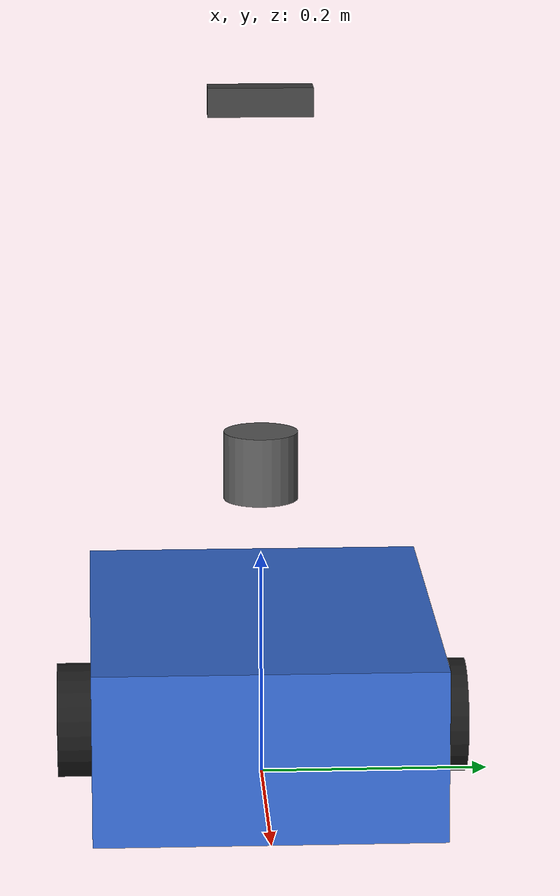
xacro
<?xml version="1.0"?>
<robot name="my_robot" xmlns:xacro="http://www.ros.org/wiki/xacro">

  <!-- base footprint -->
  <link name="base_footprint"/>

  <!-- main body -->
  <link name="base_link">
    <inertial>
      <origin xyz="0 0 0.075" rpy="0 0 0"/>
      <mass value="10.0"/>
      <inertia ixx="0.10" ixy="0.0" ixz="0.0"
               iyy="0.10" iyz="0.0"
               izz="0.10"/>
    </inertial>

    <visual>
      <origin xyz="0 0 0.075" rpy="0 0 0"/>
      <geometry>
        <box size="0.40 0.30 0.15"/>
      </geometry>
      <material name="blue">
        <color rgba="0.2 0.4 0.8 1.0"/>
      </material>
    </visual>

    <collision>
      <origin xyz="0 0 0.075" rpy="0 0 0"/>
      <geometry>
        <box size="0.40 0.30 0.15"/>
      </geometry>
    </collision>
  </link>

  <joint name="base_footprint_joint" type="fixed">
    <parent link="base_footprint"/>
    <child link="base_link"/>
    <origin xyz="0 0 0" rpy="0 0 0"/>
  </joint>

  <!-- left wheel -->
  <link name="left_wheel_link">
    <inertial>
      <origin xyz="0 0 0" rpy="0 0 0"/>
      <mass value="1.0"/>
      <inertia ixx="0.001" ixy="0.0" ixz="0.0"
               iyy="0.001" iyz="0.0"
               izz="0.001"/>
    </inertial>

    <visual>
      <origin xyz="0 0 0" rpy="1.57079632679 0 0"/>
      <geometry>
        <cylinder radius="0.05" length="0.03"/>
      </geometry>
      <material name="black">
        <color rgba="0.1 0.1 0.1 1.0"/>
      </material>
    </visual>

    <collision>
      <origin xyz="0 0 0" rpy="1.57079632679 0 0"/>
      <geometry>
        <cylinder radius="0.05" length="0.03"/>
      </geometry>
    </collision>
  </link>

  <joint name="left_wheel_joint" type="continuous">
    <parent link="base_link"/>
    <child link="left_wheel_link"/>
    <origin xyz="0.0 0.165 0.05" rpy="0 0 0"/>
    <axis xyz="0 1 0"/>
  </joint>

  <!-- right wheel -->
  <link name="right_wheel_link">
    <inertial>
      <origin xyz="0 0 0" rpy="0 0 0"/>
      <mass value="1.0"/>
      <inertia ixx="0.001" ixy="0.0" ixz="0.0"
               iyy="0.001" iyz="0.0"
               izz="0.001"/>
    </inertial>

    <visual>
      <origin xyz="0 0 0" rpy="1.57079632679 0 0"/>
      <geometry>
        <cylinder radius="0.05" length="0.03"/>
      </geometry>
      <material name="black"/>
    </visual>

    <collision>
      <origin xyz="0 0 0" rpy="1.57079632679 0 0"/>
      <geometry>
        <cylinder radius="0.05" length="0.03"/>
      </geometry>
    </collision>
  </link>

  <joint name="right_wheel_joint" type="continuous">
    <parent link="base_link"/>
    <child link="right_wheel_link"/>
    <origin xyz="0.0 -0.165 0.05" rpy="0 0 0"/>
    <axis xyz="0 1 0"/>
  </joint>

  <!-- caster wheel (for stability) -->
  <link name="caster_link">
    <inertial>
      <origin xyz="0 0 0" rpy="0 0 0"/>
      <mass value="0.2"/>
      <inertia ixx="0.0001" ixy="0.0" ixz="0.0"
               iyy="0.0001" iyz="0.0"
               izz="0.0001"/>
    </inertial>

    <visual>
      <geometry>
        <sphere radius="0.02"/>
      </geometry>
      <material name="gray">
        <color rgba="0.5 0.5 0.5 1.0"/>
      </material>
    </visual>

    <collision>
      <geometry>
        <sphere radius="0.02"/>
      </geometry>
    </collision>
  </link>

  <joint name="caster_joint" type="fixed">
    <parent link="base_link"/>
    <child link="caster_link"/>
    <origin xyz="-0.15 0 0.02" rpy="0 0 0"/>
  </joint>

  <!-- RGBD camera mount -->
  <link name="camera_mount_link"/>
  <joint name="camera_mount_joint" type="fixed">
    <parent link="base_link"/>
    <child link="camera_mount_link"/>
    <origin xyz="0.0 0.0 0.60" rpy="0 0 0"/>
  </joint>

  <!-- camera body -->
  <link name="camera_link">
    <inertial>
      <origin xyz="0 0 0" rpy="0 0 0"/>
      <mass value="0.2"/>
      <inertia ixx="0.0001" ixy="0.0" ixz="0.0"
               iyy="0.0001" iyz="0.0"
               izz="0.0001"/>
    </inertial>

    <visual>
      <origin xyz="0 0 0" rpy="0 0 0"/>
      <geometry>
        <box size="0.025 0.09 0.025"/>
      </geometry>
      <material name="dark_gray">
        <color rgba="0.25 0.25 0.25 1.0"/>
      </material>
    </visual>

    <collision>
      <origin xyz="0 0 0" rpy="0 0 0"/>
      <geometry>
        <box size="0.09 0.025 0.025"/>
      </geometry>
    </collision>
  </link>

  <gazebo reference="camera_link">
    <material>Gazebo/DarkGrey</material>
  </gazebo>

  <joint name="camera_joint" type="fixed">
    <parent link="camera_mount_link"/>
    <child link="camera_link"/>
    <origin xyz="0 0 0" rpy="0 0 0"/>
  </joint>

  <!-- color frame -->
  <link name="camera_color_frame"/>
  <joint name="camera_color_joint" type="fixed">
    <parent link="camera_link"/>
    <child link="camera_color_frame"/>
    <origin xyz="0 0 0" rpy="0 0 0"/>
  </joint>

  <link name="camera_color_optical_frame"/>
  <joint name="camera_color_optical_joint" type="fixed">
    <parent link="camera_color_frame"/>
    <child link="camera_color_optical_frame"/>
    <origin xyz="0 0 0" rpy="-1.57079632679 0 -1.57079632679"/>
  </joint>

  <!-- depth frame -->
  <link name="camera_depth_frame"/>
  <joint name="camera_depth_joint" type="fixed">
    <parent link="camera_link"/>
    <child link="camera_depth_frame"/>
    <origin xyz="0 0 0" rpy="0 0 0"/>
  </joint>

  <link name="camera_depth_optical_frame"/>
  <joint name="camera_depth_optical_joint" type="fixed">
    <parent link="camera_depth_frame"/>
    <child link="camera_depth_optical_frame"/>
    <origin xyz="0 0 0" rpy="-1.57079632679 0 -1.57079632679"/>
  </joint>

  <!-- 3D lidar mount -->
  <link name="lidar_link">
    <inertial>
      <origin xyz="0 0 0" rpy="0 0 0"/>
      <mass value="0.265"/>
      <inertia ixx="0.0002" ixy="0.0" ixz="0.0"
               iyy="0.0002" iyz="0.0"
               izz="0.0002"/>
    </inertial>

    <visual>
      <origin xyz="0 0 0" rpy="0 0 0"/>
      <geometry>
        <cylinder radius="0.0325" length="0.06"/>
      </geometry>
      <material name="lidar_gray">
        <color rgba="0.35 0.35 0.35 1.0"/>
      </material>
    </visual>

    <collision>
      <origin xyz="0 0 0" rpy="0 0 0"/>
      <geometry>
        <cylinder radius="0.0325" length="0.06"/>
      </geometry>
    </collision>
  </link>

  <joint name="lidar_joint" type="fixed">
    <parent link="base_link"/>
    <child link="lidar_link"/>
    <origin xyz="0.0 0.0 0.28" rpy="0 0 0"/>
  </joint>

  <link name="lidar_frame"/>
  <joint name="lidar_frame_joint" type="fixed">
    <parent link="lidar_link"/>
    <child link="lidar_frame"/>
    <origin xyz="0 0 0" rpy="0 0 0"/>
  </joint>

  <gazebo reference="lidar_link">
    <material>Gazebo/DarkGrey</material>
  </gazebo>

  <!-- friction -->
  <gazebo reference="left_wheel_link">
    <mu1>1.0</mu1>
    <mu2>1.0</mu2>
  </gazebo>

  <gazebo reference="right_wheel_link">
    <mu1>1.0</mu1>
    <mu2>1.0</mu2>
  </gazebo>

  <!-- diff drive plugin -->
  <gazebo>
    <plugin name="diff_drive" filename="libgazebo_ros_diff_drive.so">
      <ros>
        <namespace>/</namespace>
      </ros>

      <update_rate>50</update_rate>

      <left_joint>left_wheel_joint</left_joint>
      <right_joint>right_wheel_joint</right_joint>

      <wheel_separation>0.33</wheel_separation>
      <wheel_diameter>0.10</wheel_diameter>

      <max_wheel_torque>20.0</max_wheel_torque>
      <max_wheel_acceleration>10.0</max_wheel_acceleration>

      <command_topic>cmd_vel</command_topic>
      <odometry_topic>odom</odometry_topic>
      <odometry_frame>odom</odometry_frame>
      <robot_base_frame>base_footprint</robot_base_frame>

      <publish_odom>true</publish_odom>
      <publish_odom_tf>true</publish_odom_tf>
      <publish_wheel_tf>true</publish_wheel_tf>
    </plugin>
  </gazebo>

  <!-- Gazebo RGBD camera -->
  <gazebo reference="camera_link">
    <sensor name="rgbd_sensor" type="depth">
      <always_on>true</always_on>
      <update_rate>30.0</update_rate>
      <visualize>false</visualize>

      <camera>
        <horizontal_fov>1.211259</horizontal_fov>
        <image>
          <width>640</width>
          <height>480</height>
          <format>R8G8B8</format>
        </image>
        <clip>
          <near>0.1</near>
          <far>8.0</far>
        </clip>
      </camera>

      <plugin name="gazebo_ros_camera" filename="libgazebo_ros_camera.so">
        <ros>
          <namespace>/</namespace>
          <remapping>rgbd/image_raw:=rgbd/image_raw</remapping>
          <remapping>rgbd/camera_info:=rgbd/camera_info</remapping>
          <remapping>rgbd/depth/image_raw:=rgbd/depth/image_raw</remapping>
          <remapping>rgbd/depth/camera_info:=rgbd/depth/camera_info</remapping>
          <remapping>rgbd/points:=rgbd/points</remapping>
        </ros>

        <camera_name>rgbd</camera_name>
        <frame_name>camera_depth_optical_frame</frame_name>
        <min_depth>0.1</min_depth>
        <max_depth>8.0</max_depth>
      </plugin>
    </sensor>
  </gazebo>

  <!-- Gazebo 3D lidar -->
  <gazebo reference="lidar_link">
    <sensor name="lidar_sensor" type="ray">
      <always_on>true</always_on>
      <update_rate>10.0</update_rate>
      <visualize>false</visualize>

      <ray>
        <scan>
          <horizontal>
            <samples>1000</samples>
            <resolution>1.0</resolution>
            <min_angle>-3.14159265359</min_angle>
            <max_angle>3.14159265359</max_angle>
          </horizontal>
          <vertical>
            <samples>20</samples>
            <resolution>1.0</resolution>
            <min_angle>-0.122173</min_angle>
            <max_angle>0.907571</max_angle>
          </vertical>
        </scan>
        <range>
          <min>0.1</min>
          <max>40.0</max>
          <resolution>0.01</resolution>
        </range>
        <noise>
          <type>gaussian</type>
          <mean>0.0</mean>
          <stddev>0.01</stddev>
        </noise>
      </ray>

      <plugin name="lidar_pointcloud" filename="libgazebo_ros_ray_sensor.so">
        <ros>
          <namespace>/lidar</namespace>
          <remapping>~/out:=points</remapping>
        </ros>
        <output_type>sensor_msgs/PointCloud2</output_type>
        <frame_name>lidar_frame</frame_name>
      </plugin>
    </sensor>
  </gazebo>

</robot>
